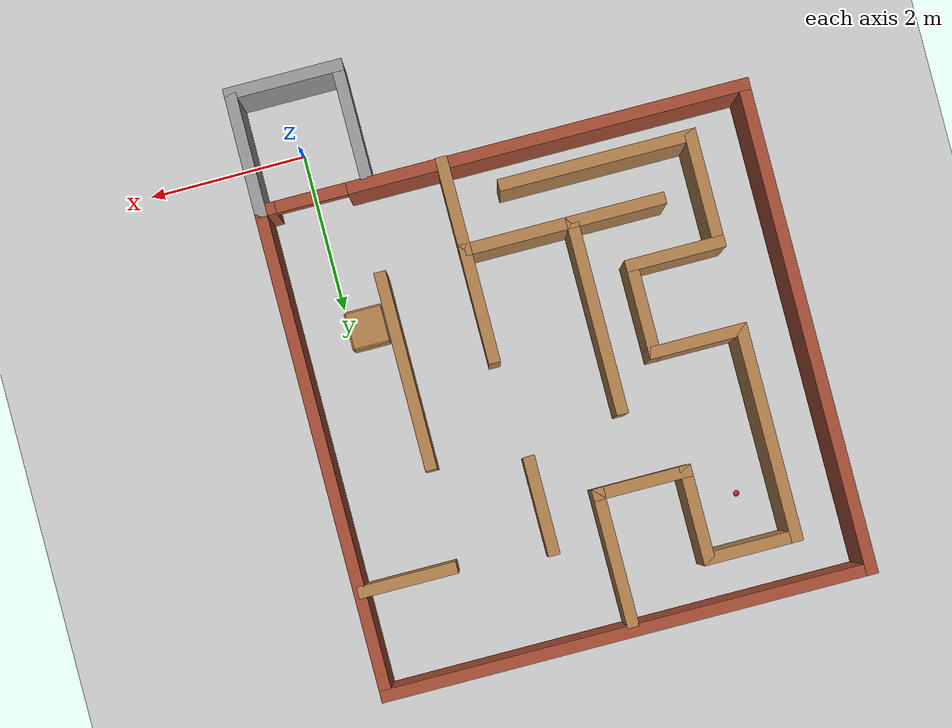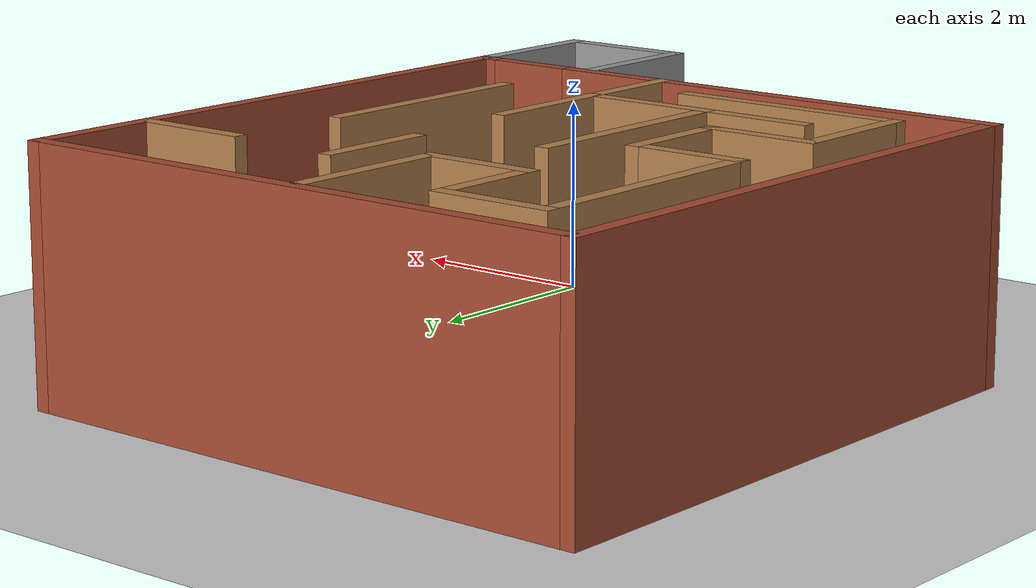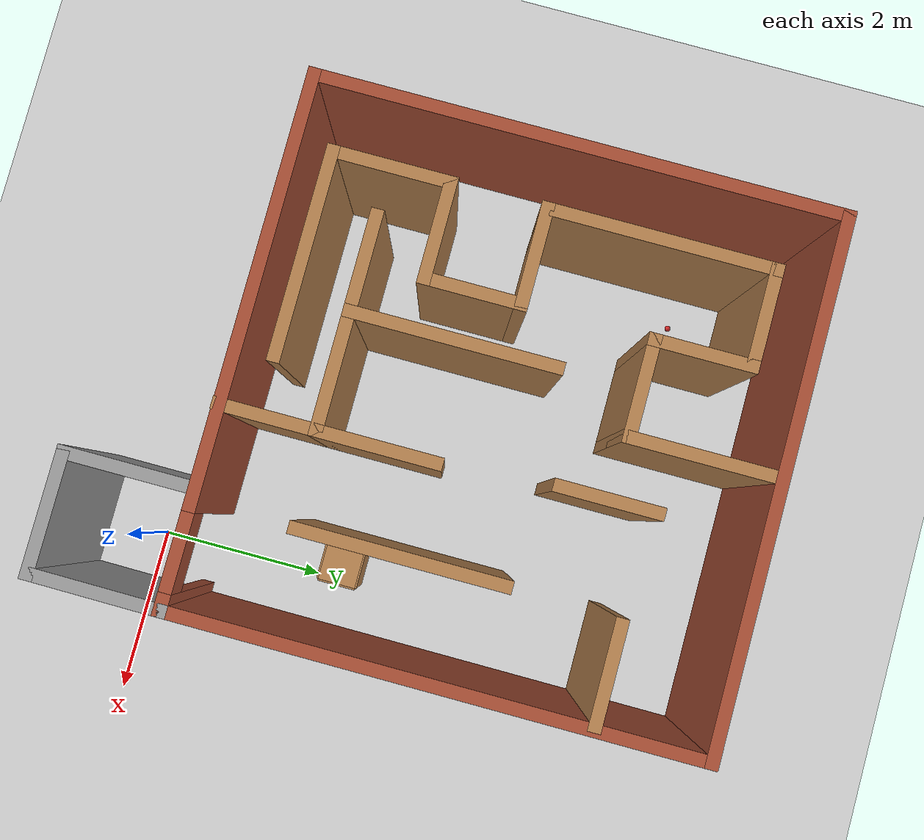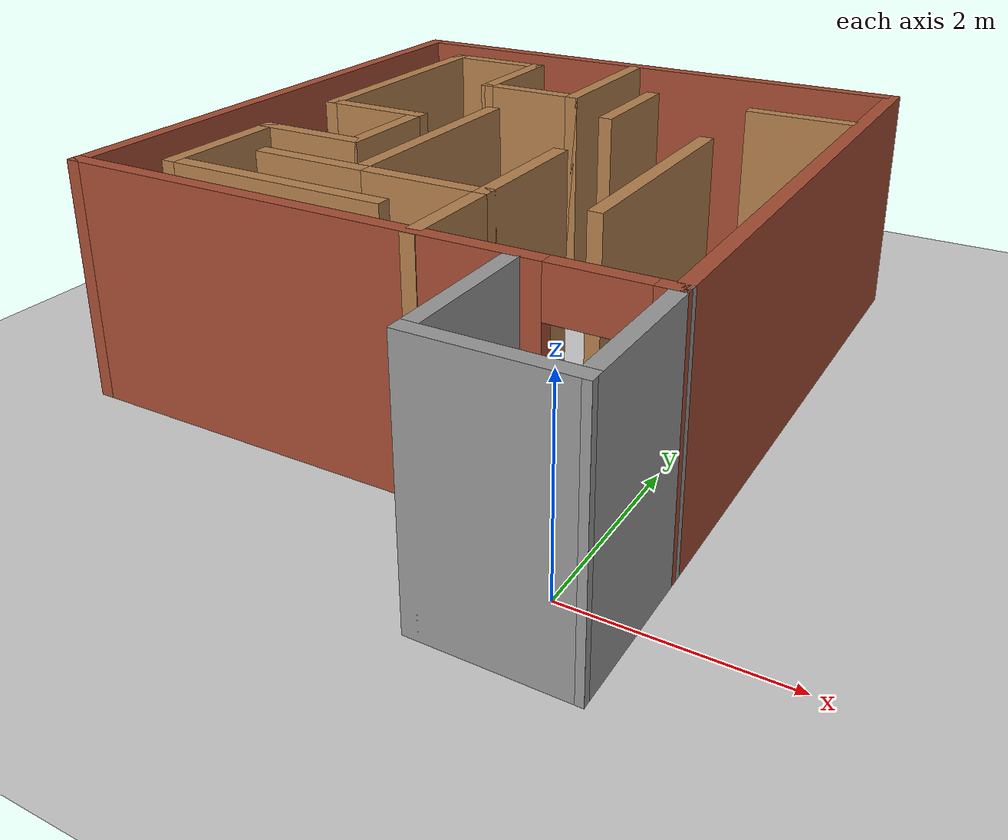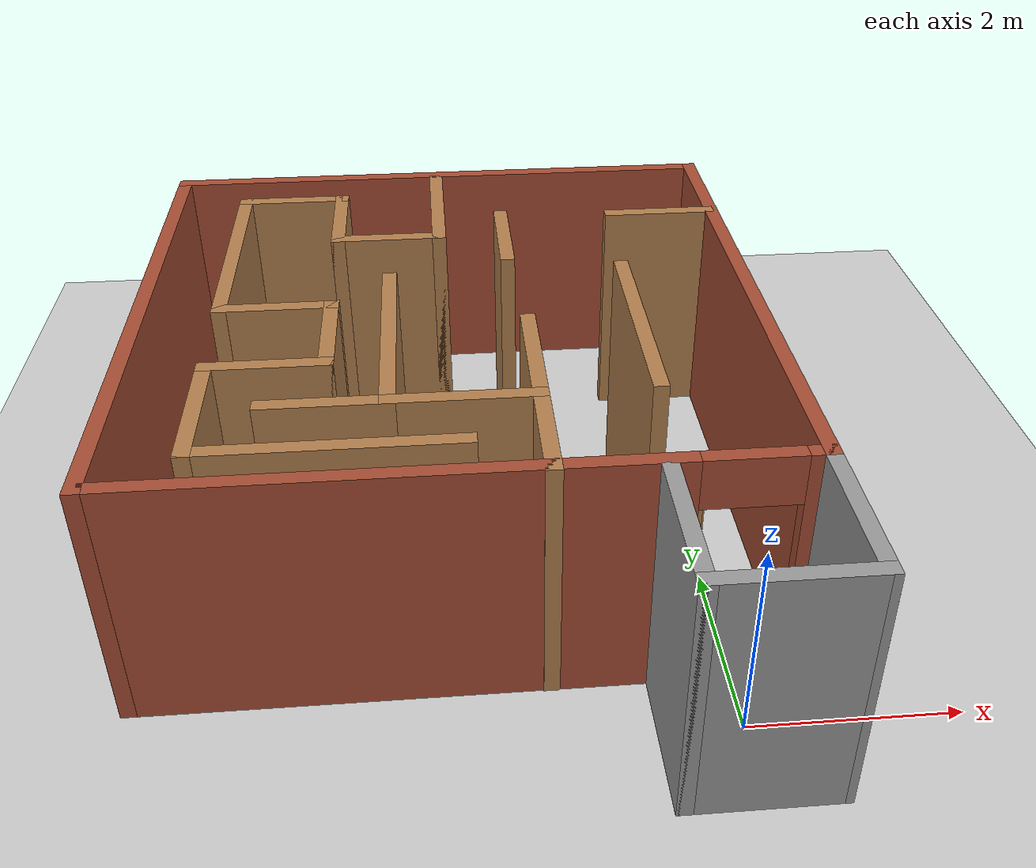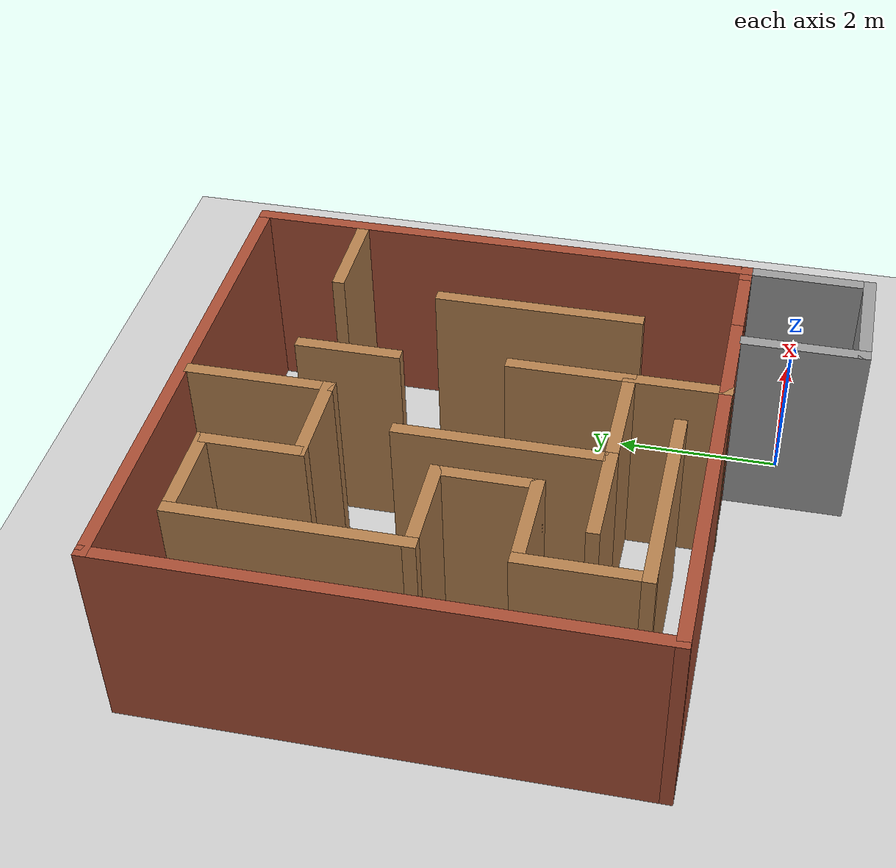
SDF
<sdf version="1.7">
 <world name="default">
  <light name="sun" type="directional">
   <pose>0 0 10 0 -0 0</pose>
   <diffuse>0.8 0.8 0.8 1</diffuse>
   <specular>0.2 0.2 0.2 1</specular>
   <attenuation>
    <range>1000</range>
    <constant>0.9</constant>
    <linear>0.01</linear>
    <quadratic>0.001</quadratic>
   </attenuation>
   <direction>-0.5 0.1 -0.9</direction>
   <spot><inner_angle>0</inner_angle><outer_angle>0</outer_angle><falloff>0</falloff></spot>
  </light>
  <model name="ground_plane">
   <static>1</static>
   <link name="link">
    <collision name="collision">
     <geometry><plane><normal>0 0 1</normal><size>100 100</size></plane></geometry>
     <surface><friction><ode><mu>100</mu><mu2>50</mu2></ode></friction></surface>
    </collision>
    <visual name="visual">
     <cast_shadows>0</cast_shadows>
     <geometry><plane><normal>0 0 1</normal><size>100 100</size></plane></geometry>
     <material>
      <script><uri>file://media/materials/scripts/gazebo.material</uri><name>Gazebo/Grey</name></script>
     </material>
    </visual>
   </link>
  </model>
  <gravity>0 0 -9.8</gravity>
  <magnetic_field>6e-06 2.3e-05 -4.2e-05</magnetic_field>
  <atmosphere type="adiabatic"/>
  <physics type="ode">
   <max_step_size>0.001</max_step_size>
   <real_time_factor>1</real_time_factor>
   <real_time_update_rate>1000</real_time_update_rate>
  </physics>
  <scene><ambient>0.4 0.4 0.4 1</ambient><background>0.7 0.7 0.7 1</background><shadows>1</shadows></scene>
  <audio><device>default</device></audio>
  <spherical_coordinates>
   <surface_model>EARTH_WGS84</surface_model>
   <latitude_deg>0</latitude_deg>
   <longitude_deg>0</longitude_deg>
   <elevation>0</elevation>
   <heading_deg>0</heading_deg>
  </spherical_coordinates>
  <model name="maze">
   <pose>-2.40035 2.98185 0 0 -0 0</pose>
   <link name="Wall_0">
    <collision name="Wall_0_Collision">
     <geometry><box><size>6.25 0.15 2.5</size></box></geometry>
     <pose>0 0 1.25 0 -0 0</pose>
    </collision>
    <visual name="Wall_0_Visual">
     <pose>0 0 1.25 0 -0 0</pose>
     <geometry><box><size>6.25 0.15 2.5</size></box></geometry>
     <material>
      <script><uri>file://media/materials/scripts/gazebo.material</uri><name>Gazebo/Bricks</name></script>
      <ambient>1 1 1 1</ambient>
     </material>
     <meta><layer>0</layer></meta>
    </visual>
    <pose>-0.000181 3.79262 0 0 -0 0</pose>
   </link>
   <link name="Wall_1">
    <collision name="Wall_1_Collision">
     <geometry><box><size>6.25 0.15 2.5</size></box></geometry>
     <pose>0 0 1.25 0 -0 0</pose>
    </collision>
    <visual name="Wall_1_Visual">
     <pose>0 0 1.25 0 -0 0</pose>
     <geometry><box><size>6.25 0.15 2.5</size></box></geometry>
     <material>
      <script><uri>file://media/materials/scripts/gazebo.material</uri><name>Gazebo/Bricks</name></script>
      <ambient>1 1 1 1</ambient>
     </material>
     <meta><layer>0</layer></meta>
    </visual>
    <pose>3.04982 0.742623 0 0 -0 -1.5708</pose>
   </link>
   <link name="Wall_10">
    <collision name="Wall_10_Collision">
     <geometry><box><size>1.25 0.15 2.5</size></box></geometry>
     <pose>0 0 1.25 0 -0 0</pose>
    </collision>
    <visual name="Wall_10_Visual">
     <pose>0 0 1.25 0 -0 0</pose>
     <geometry><box><size>1.25 0.15 2.5</size></box></geometry>
     <material>
      <script><uri>file://media/materials/scripts/gazebo.material</uri><name>Gazebo/Wood</name></script>
      <ambient>1 1 1 1</ambient>
     </material>
     <meta><layer>0</layer></meta>
    </visual>
    <pose>-1.71946 -0.523959 0 0 -0 0</pose>
   </link>
   <link name="Wall_11">
    <collision name="Wall_11_Collision">
     <geometry><box><size>1.25 0.15 2.5</size></box></geometry>
     <pose>0 0 1.25 0 -0 0</pose>
    </collision>
    <visual name="Wall_11_Visual">
     <pose>0 0 1.25 0 -0 0</pose>
     <geometry><box><size>1.25 0.15 2.5</size></box></geometry>
     <material>
      <script><uri>file://media/materials/scripts/gazebo.material</uri><name>Gazebo/Wood</name></script>
      <ambient>1 1 1 1</ambient>
     </material>
     <meta><layer>0</layer></meta>
    </visual>
    <pose>-1.16946 0.026041 0 0 -0 1.5708</pose>
   </link>
   <link name="Wall_12">
    <collision name="Wall_12_Collision">
     <geometry><box><size>1.25 0.15 2.5</size></box></geometry>
     <pose>0 0 1.25 0 -0 0</pose>
    </collision>
    <visual name="Wall_12_Visual">
     <pose>0 0 1.25 0 -0 0</pose>
     <geometry><box><size>1.25 0.15 2.5</size></box></geometry>
     <material>
      <script><uri>file://media/materials/scripts/gazebo.material</uri><name>Gazebo/Wood</name></script>
      <ambient>1 1 1 1</ambient>
     </material>
     <meta><layer>0</layer></meta>
    </visual>
    <pose>-1.71946 0.576041 0 0 -0 3.14159</pose>
   </link>
   <link name="Wall_13">
    <collision name="Wall_13_Collision">
     <geometry><box><size>2.75 0.15 2.5</size></box></geometry>
     <pose>0 0 1.25 0 -0 0</pose>
    </collision>
    <visual name="Wall_13_Visual">
     <pose>0 0 1.25 0 -0 0</pose>
     <geometry><box><size>2.75 0.15 2.5</size></box></geometry>
     <material>
      <script><uri>file://media/materials/scripts/gazebo.material</uri><name>Gazebo/Wood</name></script>
      <ambient>1 1 1 1</ambient>
     </material>
     <meta><layer>0</layer></meta>
    </visual>
    <pose>-2.26946 1.87604 0 0 -0 1.5708</pose>
   </link>
   <link name="Wall_14">
    <collision name="Wall_14_Collision">
     <geometry><box><size>1.25 0.15 2.5</size></box></geometry>
     <pose>0 0 1.25 0 -0 0</pose>
    </collision>
    <visual name="Wall_14_Visual">
     <pose>0 0 1.25 0 -0 0</pose>
     <geometry><box><size>1.25 0.15 2.5</size></box></geometry>
     <material>
      <script><uri>file://media/materials/scripts/gazebo.material</uri><name>Gazebo/Wood</name></script>
      <ambient>1 1 1 1</ambient>
     </material>
     <meta><layer>0</layer></meta>
    </visual>
    <pose>-1.71946 3.17604 0 0 -0 0</pose>
   </link>
   <link name="Wall_15">
    <collision name="Wall_15_Collision">
     <geometry><box><size>1.25 0.15 2.5</size></box></geometry>
     <pose>0 0 1.25 0 -0 0</pose>
    </collision>
    <visual name="Wall_15_Visual">
     <pose>0 0 1.25 0 -0 0</pose>
     <geometry><box><size>1.25 0.15 2.5</size></box></geometry>
     <material>
      <script><uri>file://media/materials/scripts/gazebo.material</uri><name>Gazebo/Wood</name></script>
      <ambient>1 1 1 1</ambient>
     </material>
     <meta><layer>0</layer></meta>
    </visual>
    <pose>-1.16946 2.62604 0 0 -0 -1.5708</pose>
   </link>
   <link name="Wall_16">
    <collision name="Wall_16_Collision">
     <geometry><box><size>1.25 0.15 2.5</size></box></geometry>
     <pose>0 0 1.25 0 -0 0</pose>
    </collision>
    <visual name="Wall_16_Visual">
     <pose>0 0 1.25 0 -0 0</pose>
     <geometry><box><size>1.25 0.15 2.5</size></box></geometry>
     <material>
      <script><uri>file://media/materials/scripts/gazebo.material</uri><name>Gazebo/Wood</name></script>
      <ambient>1 1 1 1</ambient>
     </material>
     <meta><layer>0</layer></meta>
    </visual>
    <pose>-0.619459 2.07604 0 0 -0 0</pose>
   </link>
   <link name="Wall_17">
    <collision name="Wall_17_Collision">
     <geometry><box><size>1.75 0.15 2.5</size></box></geometry>
     <pose>0 0 1.25 0 -0 0</pose>
    </collision>
    <visual name="Wall_17_Visual">
     <pose>0 0 1.25 0 -0 0</pose>
     <geometry><box><size>1.75 0.15 2.5</size></box></geometry>
     <material>
      <script><uri>file://media/materials/scripts/gazebo.material</uri><name>Gazebo/Wood</name></script>
      <ambient>1 1 1 1</ambient>
     </material>
     <meta><layer>0</layer></meta>
    </visual>
    <pose>-0.069459 2.87604 0 0 -0 1.5708</pose>
   </link>
   <link name="Wall_2">
    <pose>-0.000181 -2.30738 0 0 -0 3.14159</pose>
    <visual name="Wall_2_Visual_0">
     <pose>-2.99095 0 1.25 0 -0 0</pose>
     <geometry><box><size>0.268101 0.15 2.5</size></box></geometry>
     <material>
      <script><uri>file://media/materials/scripts/gazebo.material</uri><name>Gazebo/Bricks</name></script>
      <ambient>1 1 1 1</ambient>
     </material>
     <meta><layer>0</layer></meta>
    </visual>
    <collision name="Wall_2_Collision_0">
     <geometry><box><size>0.268101 0.15 2.5</size></box></geometry>
     <pose>-2.99095 0 1.25 0 -0 0</pose>
    </collision>
    <visual name="Wall_2_Visual_1">
     <pose>0.58405 0 1.25 0 -0 0</pose>
     <geometry><box><size>5.0819 0.15 2.5</size></box></geometry>
     <material>
      <script><uri>file://media/materials/scripts/gazebo.material</uri><name>Gazebo/Bricks</name></script>
      <ambient>1 1 1 1</ambient>
     </material>
     <meta><layer>0</layer></meta>
    </visual>
    <collision name="Wall_2_Collision_1">
     <geometry><box><size>5.0819 0.15 2.5</size></box></geometry>
     <pose>0.58405 0 1.25 0 -0 0</pose>
    </collision>
    <visual name="Wall_2_Visual_2">
     <pose>-2.4069 0 2.25 0 -0 0</pose>
     <geometry><box><size>0.9 0.15 0.5</size></box></geometry>
     <material>
      <script><uri>file://media/materials/scripts/gazebo.material</uri><name>Gazebo/Bricks</name></script>
      <ambient>1 1 1 1</ambient>
     </material>
     <meta><layer>0</layer></meta>
    </visual>
    <collision name="Wall_2_Collision_2">
     <geometry><box><size>0.9 0.15 0.5</size></box></geometry>
     <pose>-2.4069 0 2.25 0 -0 0</pose>
    </collision>
   </link>
   <link name="Wall_21">
    <collision name="Wall_21_Collision">
     <geometry><box><size>2.5 0.15 2.5</size></box></geometry>
     <pose>0 0 1.25 0 -0 0</pose>
    </collision>
    <visual name="Wall_21_Visual">
     <pose>0 0 1.25 0 -0 0</pose>
     <geometry><box><size>2.5 0.15 2.5</size></box></geometry>
     <material>
      <script><uri>file://media/materials/scripts/gazebo.material</uri><name>Gazebo/Wood</name></script>
      <ambient>1 1 1 1</ambient>
     </material>
     <meta><layer>0</layer></meta>
    </visual>
    <pose>1.82659 0.025828 0 0 -0 -1.5708</pose>
   </link>
   <link name="Wall_23">
    <collision name="Wall_23_Collision">
     <geometry><box><size>2.5 0.15 2.5</size></box></geometry>
     <pose>0 0 1.25 0 -0 0</pose>
    </collision>
    <visual name="Wall_23_Visual">
     <pose>0 0 1.25 0 -0 0</pose>
     <geometry><box><size>2.5 0.15 2.5</size></box></geometry>
     <material>
      <script><uri>file://media/materials/scripts/gazebo.material</uri><name>Gazebo/Wood</name></script>
      <ambient>1 1 1 1</ambient>
     </material>
     <meta><layer>0</layer></meta>
    </visual>
    <pose>-0.601572 -0.040867 0 0 -0 -1.5708</pose>
   </link>
   <link name="Wall_24">
    <collision name="Wall_24_Collision">
     <geometry><box><size>1.25 0.15 2.5</size></box></geometry>
     <pose>0 0 1.25 0 -0 0</pose>
    </collision>
    <visual name="Wall_24_Visual">
     <pose>0 0 1.25 0 -0 0</pose>
     <geometry><box><size>1.25 0.15 2.5</size></box></geometry>
     <material>
      <script><uri>file://media/materials/scripts/gazebo.material</uri><name>Gazebo/Wood</name></script>
      <ambient>1 1 1 1</ambient>
     </material>
     <meta><layer>0</layer></meta>
    </visual>
    <pose>-1.15157 -1.21587 0 0 -0 3.14159</pose>
   </link>
   <link name="Wall_26">
    <collision name="Wall_26_Collision">
     <geometry><box><size>1.5 0.15 2.5</size></box></geometry>
     <pose>0 0 1.25 0 -0 0</pose>
    </collision>
    <visual name="Wall_26_Visual">
     <pose>0 0 1.25 0 -0 0</pose>
     <geometry><box><size>1.5 0.15 2.5</size></box></geometry>
     <material>
      <script><uri>file://media/materials/scripts/gazebo.material</uri><name>Gazebo/Wood</name></script>
      <ambient>1 1 1 1</ambient>
     </material>
     <meta><layer>0</layer></meta>
    </visual>
    <pose>0.073428 -1.21587 0 0 -0 0</pose>
   </link>
   <link name="Wall_27">
    <collision name="Wall_27_Collision">
     <geometry><box><size>1.5 0.15 2.5</size></box></geometry>
     <pose>0 0 1.25 0 -0 0</pose>
    </collision>
    <visual name="Wall_27_Visual">
     <pose>0 0 1.25 0 -0 0</pose>
     <geometry><box><size>1.5 0.15 2.5</size></box></geometry>
     <material>
      <script><uri>file://media/materials/scripts/gazebo.material</uri><name>Gazebo/Wood</name></script>
      <ambient>1 1 1 1</ambient>
     </material>
     <meta><layer>0</layer></meta>
    </visual>
    <pose>0.748428 -0.540867 0 0 -0 1.5708</pose>
   </link>
   <link name="Wall_29">
    <collision name="Wall_29_Collision">
     <geometry><box><size>1.25 0.15 2.5</size></box></geometry>
     <pose>0 0 1.25 0 -0 0</pose>
    </collision>
    <visual name="Wall_29_Visual">
     <pose>0 0 1.25 0 -0 0</pose>
     <geometry><box><size>1.25 0.15 2.5</size></box></geometry>
     <material>
      <script><uri>file://media/materials/scripts/gazebo.material</uri><name>Gazebo/Wood</name></script>
      <ambient>1 1 1 1</ambient>
     </material>
     <meta><layer>0</layer></meta>
    </visual>
    <pose>0.748428 -1.76587 0 0 -0 -1.5708</pose>
   </link>
   <link name="Wall_3">
    <collision name="Wall_3_Collision">
     <geometry><box><size>6.25 0.15 2.5</size></box></geometry>
     <pose>0 0 1.25 0 -0 0</pose>
    </collision>
    <visual name="Wall_3_Visual">
     <pose>0 0 1.25 0 -0 0</pose>
     <geometry><box><size>6.25 0.15 2.5</size></box></geometry>
     <material>
      <script><uri>file://media/materials/scripts/gazebo.material</uri><name>Gazebo/Bricks</name></script>
      <ambient>1 1 1 1</ambient>
     </material>
     <meta><layer>0</layer></meta>
    </visual>
    <pose>-3.05018 0.742623 0 0 -0 1.5708</pose>
   </link>
   <link name="Wall_31">
    <collision name="Wall_31_Collision">
     <geometry><box><size>1.25 0.15 2.5</size></box></geometry>
     <pose>0 0 1.25 0 -0 0</pose>
    </collision>
    <visual name="Wall_31_Visual">
     <pose>0 0 1.25 0 -0 0</pose>
     <geometry><box><size>1.25 0.15 2.5</size></box></geometry>
     <material>
      <script><uri>file://media/materials/scripts/gazebo.material</uri><name>Gazebo/Wood</name></script>
      <ambient>1 1 1 1</ambient>
     </material>
     <meta><layer>0</layer></meta>
    </visual>
    <pose>0.640223 2.03581 0 0 -0 -1.5708</pose>
   </link>
   <link name="Wall_33">
    <collision name="Wall_33_Collision">
     <geometry><box><size>1.25 0.15 2.5</size></box></geometry>
     <pose>0 0 1.25 0 -0 0</pose>
    </collision>
    <visual name="Wall_33_Visual">
     <pose>0 0 1.25 0 -0 0</pose>
     <geometry><box><size>1.25 0.15 2.5</size></box></geometry>
     <material>
      <script><uri>file://media/materials/scripts/gazebo.material</uri><name>Gazebo/Wood</name></script>
      <ambient>1 1 1 1</ambient>
     </material>
     <meta><layer>0</layer></meta>
    </visual>
    <pose>2.44951 2.49836 0 0 -0 0</pose>
   </link>
   <link name="Wall_43">
    <collision name="Wall_43_Collision">
     <geometry><box><size>1.5 0.15 2.5</size></box></geometry>
     <pose>0 0 1.25 0 -0 0</pose>
    </collision>
    <visual name="Wall_43_Visual">
     <pose>0 0 1.25 0 -0 0</pose>
     <geometry><box><size>1.5 0.15 2.5</size></box></geometry>
     <material>
      <script><uri>file://media/materials/scripts/gazebo.material</uri><name>Gazebo/Grey</name></script>
      <ambient>1 1 1 1</ambient>
     </material>
     <meta><layer>0</layer></meta>
    </visual>
    <pose>1.69265 -3.11726 0 0 -0 -1.5708</pose>
   </link>
   <link name="Wall_44">
    <collision name="Wall_44_Collision">
     <geometry><box><size>1.5 0.15 2.5</size></box></geometry>
     <pose>0 0 1.25 0 -0 0</pose>
    </collision>
    <visual name="Wall_44_Visual">
     <pose>0 0 1.25 0 -0 0</pose>
     <geometry><box><size>1.5 0.15 2.5</size></box></geometry>
     <material>
      <script><uri>file://media/materials/scripts/gazebo.material</uri><name>Gazebo/Grey</name></script>
      <ambient>1 1 1 1</ambient>
     </material>
     <meta><layer>0</layer></meta>
    </visual>
    <pose>2.36765 -3.79226 0 0 -0 0</pose>
   </link>
   <link name="Wall_45">
    <collision name="Wall_45_Collision">
     <geometry><box><size>1.6349 0.15 2.5</size></box></geometry>
     <pose>0 0 1.25 0 -0 0</pose>
    </collision>
    <visual name="Wall_45_Visual">
     <pose>0 0 1.25 0 -0 0</pose>
     <geometry><box><size>1.6349 0.15 2.5</size></box></geometry>
     <material>
      <script><uri>file://media/materials/scripts/gazebo.material</uri><name>Gazebo/Grey</name></script>
      <ambient>1 1 1 1</ambient>
     </material>
     <meta><layer>0</layer></meta>
    </visual>
    <pose>3.04623 -3.04982 0 0 -0 1.56597</pose>
   </link>
   <link name="Wall_8">
    <collision name="Wall_8_Collision">
     <geometry><box><size>2.5 0.15 2.5</size></box></geometry>
     <pose>0 0 1.25 0 -0 0</pose>
    </collision>
    <visual name="Wall_8_Visual">
     <pose>0 0 1.25 0 -0 0</pose>
     <geometry><box><size>2.5 0.15 2.5</size></box></geometry>
     <material>
      <script><uri>file://media/materials/scripts/gazebo.material</uri><name>Gazebo/Wood</name></script>
      <ambient>1 1 1 1</ambient>
     </material>
     <meta><layer>0</layer></meta>
    </visual>
    <pose>-1.09446 -1.87396 0 0 -0 3.14159</pose>
   </link>
   <link name="Wall_9">
    <collision name="Wall_9_Collision">
     <geometry><box><size>1.5 0.15 2.5</size></box></geometry>
     <pose>0 0 1.25 0 -0 0</pose>
    </collision>
    <visual name="Wall_9_Visual">
     <pose>0 0 1.25 0 -0 0</pose>
     <geometry><box><size>1.5 0.15 2.5</size></box></geometry>
     <material>
      <script><uri>file://media/materials/scripts/gazebo.material</uri><name>Gazebo/Wood</name></script>
      <ambient>1 1 1 1</ambient>
     </material>
     <meta><layer>0</layer></meta>
    </visual>
    <pose>-2.26946 -1.19896 0 0 -0 1.5708</pose>
   </link>
   <static>1</static>
  </model>
  <model name="cabinet">
   <static>1</static>
   <link name="cabinet_bottom_plate">
    <inertial>
     <pose>0 0 -1 0 -0 0</pose>
     <inertia><ixx>2.05</ixx><ixy>0</ixy><ixz>0</ixz><iyy>2.05</iyy><iyz>0</iyz><izz>2.05</izz></inertia>
     <mass>25</mass>
    </inertial>
    <collision name="cabinet_bottom_plate_geom">
     <pose>0 0 0.01 0 -0 0</pose>
     <geometry><box><size>0.45 0.45 0.02</size></box></geometry>
    </collision>
    <visual name="cabinet_bottom_plate_geom_visual">
     <pose>0 0 0.01 0 -0 0</pose>
     <geometry><box><size>0.45 0.45 0.02</size></box></geometry>
     <material>
      <script><uri>file://media/materials/scripts/gazebo.material</uri><name>Gazebo/Wood</name></script>
     </material>
    </visual>
    <collision name="cabinet_bottom_plate_geom_cabinet_back_plate">
     <pose>0.235 0 0.51 0 -0 0</pose>
     <geometry><box><size>0.02 0.45 1.02</size></box></geometry>
    </collision>
    <visual name="cabinet_bottom_plate_geom_cabinet_back_plate_visual">
     <pose>0.235 0 0.51 0 -0 0</pose>
     <geometry><box><size>0.02 0.45 1.02</size></box></geometry>
     <material>
      <script><uri>file://media/materials/scripts/gazebo.material</uri><name>Gazebo/Wood</name></script>
     </material>
    </visual>
    <collision name="cabinet_bottom_plate_geom_cabinet_left_plate">
     <pose>0 0.235 0.51 0 -0 0</pose>
     <geometry><box><size>0.45 0.02 1.02</size></box></geometry>
    </collision>
    <visual name="cabinet_bottom_plate_geom_cabinet_left_plate_visual">
     <pose>0 0.235 0.51 0 -0 0</pose>
     <geometry><box><size>0.45 0.02 1.02</size></box></geometry>
     <material>
      <script><uri>file://media/materials/scripts/gazebo.material</uri><name>Gazebo/Wood</name></script>
     </material>
    </visual>
    <collision name="cabinet_bottom_plate_geom_cabinet_middle_plate">
     <pose>0 0 0.51 0 -0 0</pose>
     <geometry><box><size>0.45 0.45 0.02</size></box></geometry>
    </collision>
    <visual name="cabinet_bottom_plate_geom_cabinet_middle_plate_visual">
     <pose>0 0 0.51 0 -0 0</pose>
     <geometry><box><size>0.45 0.45 0.02</size></box></geometry>
     <material>
      <script><uri>file://media/materials/scripts/gazebo.material</uri><name>Gazebo/Wood</name></script>
     </material>
    </visual>
    <collision name="cabinet_bottom_plate_geom_cabinet_right_plate">
     <pose>0 -0.235 0.51 0 -0 0</pose>
     <geometry><box><size>0.45 0.02 1.02</size></box></geometry>
    </collision>
    <visual name="cabinet_bottom_plate_geom_cabinet_right_plate_visual">
     <pose>0 -0.235 0.51 0 -0 0</pose>
     <geometry><box><size>0.45 0.02 1.02</size></box></geometry>
     <material>
      <script><uri>file://media/materials/scripts/gazebo.material</uri><name>Gazebo/Wood</name></script>
     </material>
    </visual>
    <collision name="cabinet_bottom_plate_geom_cabinet_top_plate">
     <pose>0 0 1.01 0 -0 0</pose>
     <geometry><box><size>0.45 0.45 0.02</size></box></geometry>
    </collision>
    <visual name="cabinet_bottom_plate_geom_cabinet_top_plate_visual">
     <pose>0 0 1.01 0 -0 0</pose>
     <geometry><box><size>0.45 0.45 0.02</size></box></geometry>
     <material>
      <script><uri>file://media/materials/scripts/gazebo.material</uri><name>Gazebo/Wood</name></script>
     </material>
    </visual>
   </link>
   <pose>-0.237206 2.31805 0 0 -0 0</pose>
  </model>
  <model name="cricket_ball">
   <link name="link">
    <pose>0 0 0.0375 0 -0 0</pose>
    <inertial>
     <mass>0.1467</mass>
     <inertia>
      <ixx>8.25187e-05</ixx>
      <ixy>0</ixy>
      <ixz>0</ixz>
      <iyy>8.25187e-05</iyy>
      <iyz>0</iyz>
      <izz>8.25187e-05</izz>
     </inertia>
    </inertial>
    <collision name="collision">
     <geometry><sphere><radius>0.0375</radius></sphere></geometry>
     <surface>
      <contact>
       <poissons_ratio>0.347</poissons_ratio>
       <elastic_modulus>8.8e+09</elastic_modulus>
       <ode><kp>100000</kp><kd>100</kd><max_vel>100</max_vel><min_depth>0.001</min_depth></ode>
      </contact>
      <friction>
       <torsional>
        <coefficient>1</coefficient>
        <use_patch_radius>0</use_patch_radius>
        <surface_radius>0.01</surface_radius>
       </torsional>
      </friction>
     </surface>
    </collision>
    <visual name="visual">
     <geometry><sphere><radius>0.0375</radius></sphere></geometry>
     <material>
      <script><uri>file://media/materials/scripts/gazebo.material</uri><name>Gazebo/Red</name></script>
     </material>
    </visual>
    <velocity_decay><linear>0</linear><angular>0.005</angular></velocity_decay>
   </link>
   <pose>-4.20464 5.49981 -0.001014 0 -0 0</pose>
  </model>
 </world>
</sdf>
